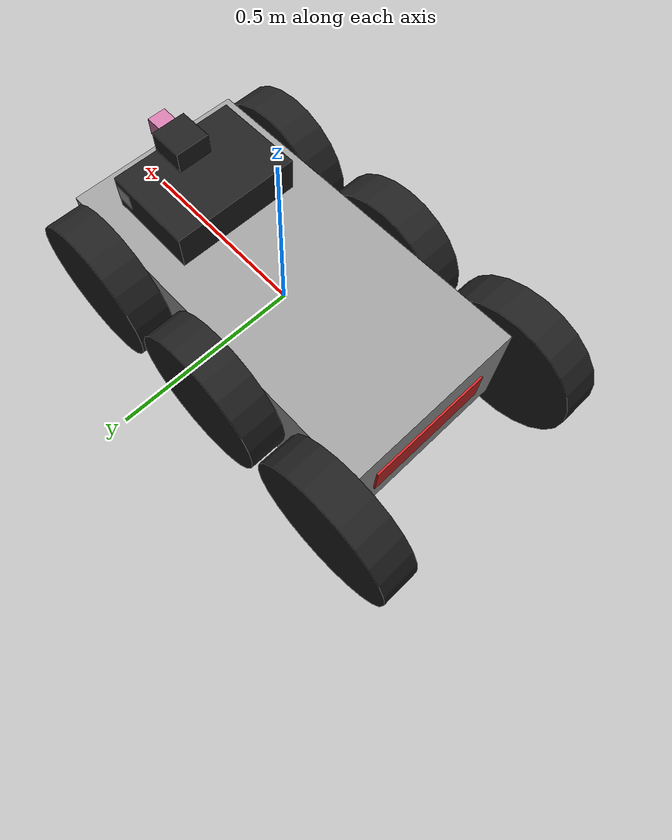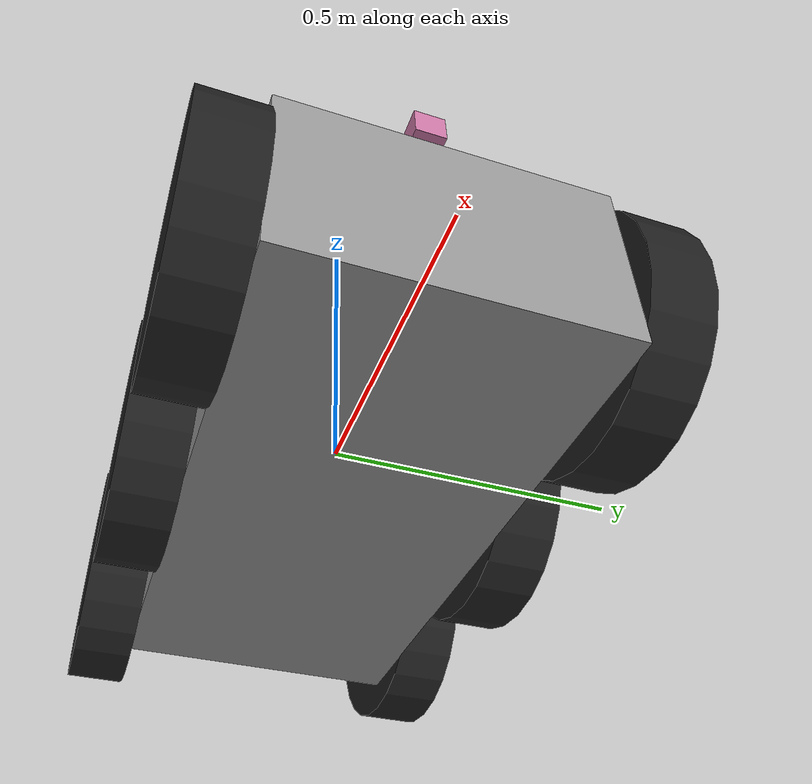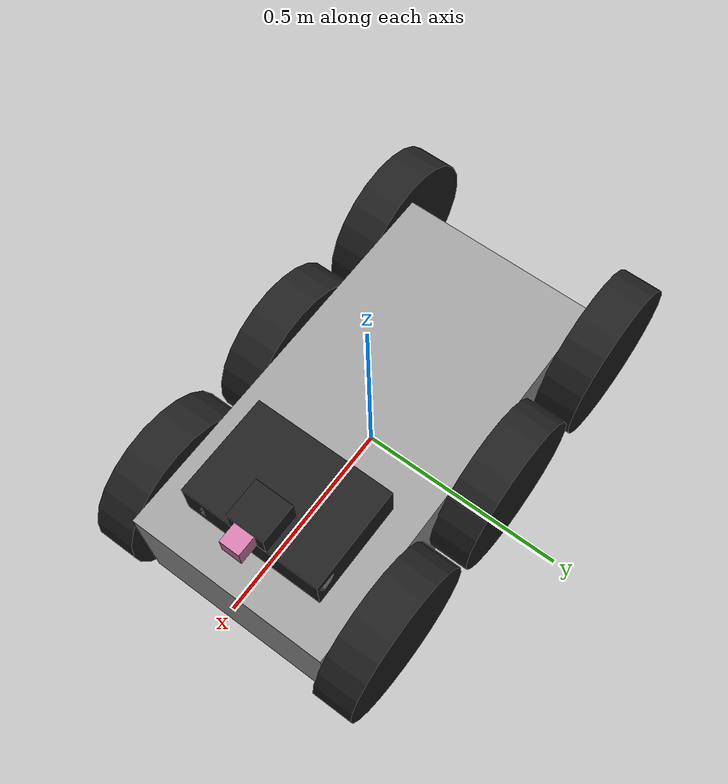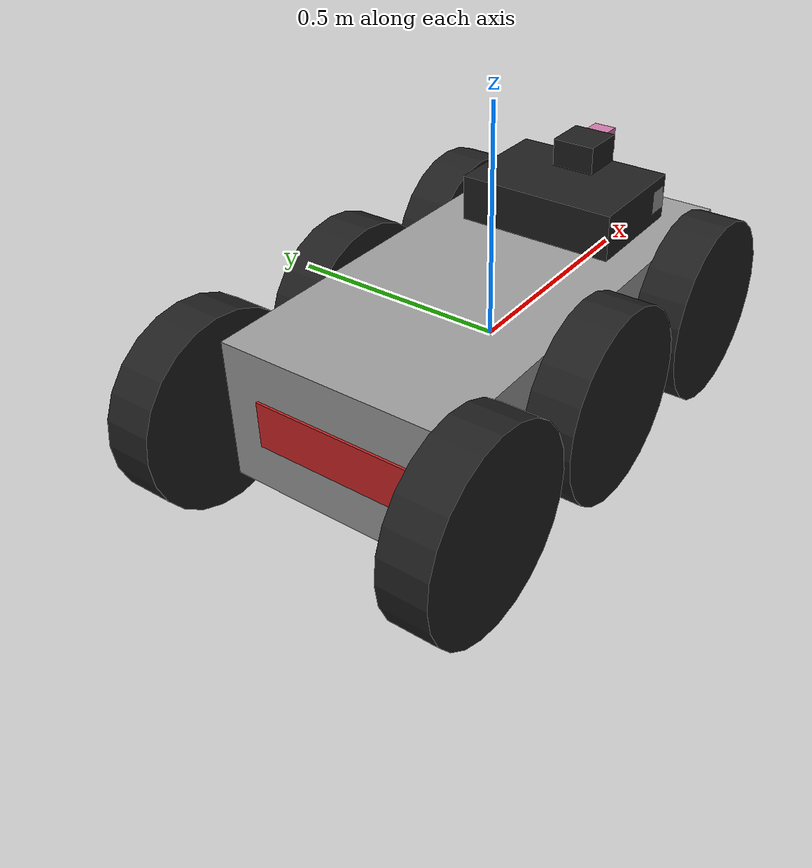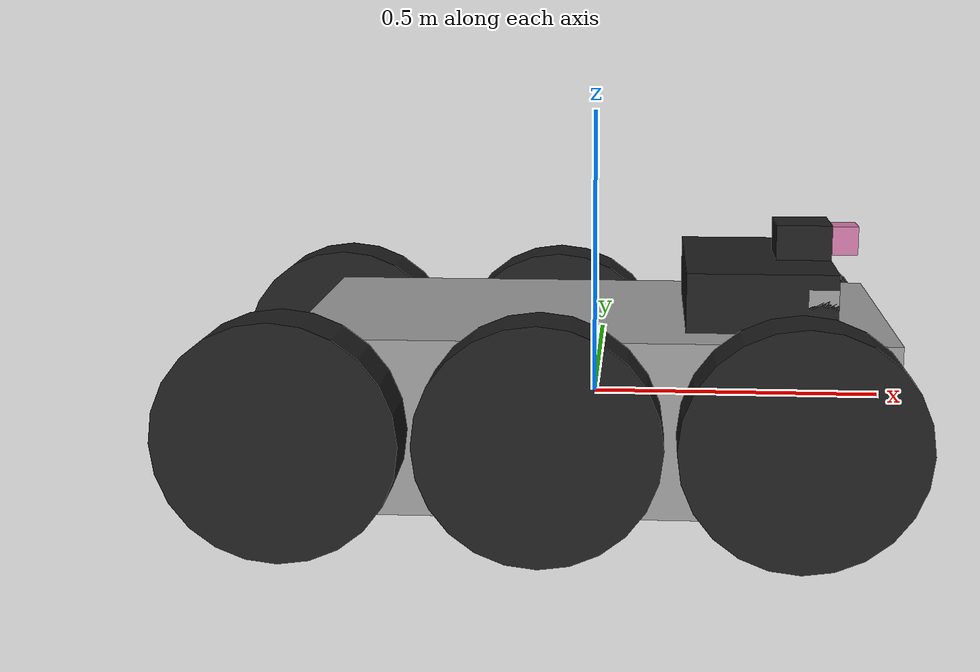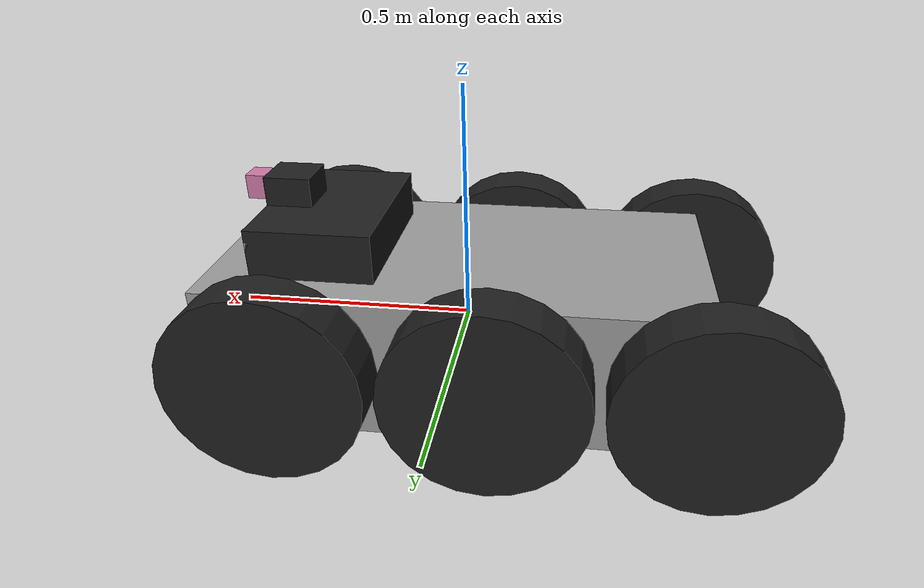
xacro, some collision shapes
<?xml version='1.0'?>

<robot name="moor" xmlns:xacro="http://www.ros.org/wiki/xacro">
<xacro:property name="cameraSize" value="0.05"/>
<xacro:property name="cameraMass" value="0.05"/>

<xacro:macro name="default_inertia">
      <inertia ixx="0.001" ixy="0.0" ixz="0.0" iyy="0.001" iyz="0.0" izz="0.001"/>
</xacro:macro>

<xacro:macro name="default_inertia_servos">
      <inertia ixx="0.01" ixy="0.0" ixz="0.0" iyy="0.01" iyz="0.0" izz="0.01"/>
</xacro:macro>

<xacro:macro name="default_limit">
    <limit effort="100.0" lower="-2.62" upper="2.62" velocity="3"/>
</xacro:macro>

<xacro:macro name="default_dynamics">
      <dynamics fricction="0" damping="0" />
</xacro:macro>

  <xacro:include filename="$(find moor_description)/urdf/moor.gazebo" />
  <xacro:include filename="$(find moor_description)/urdf/materials.xacro" />
  <xacro:include filename="$(find moor_description)/urdf/macros.xacro" />

 <!-- Base Size -->
  <xacro:property name="base_x_size" value="1" />
  <xacro:property name="base_y_size" value="0.5" />
  <xacro:property name="base_z_size" value="0.3" />

  <!-- Wheel Mounting Positions -->
  <xacro:property name="wheelbase" value="0.5120" />
  <xacro:property name="track" value="0.5708" />
  <xacro:property name="wheel_vertical_offset" value="0.03282" />

  <!-- Wheel Properties -->
  <xacro:property name="wheel_length" value="0.1" />
  <xacro:property name="wheel_radius" value="0.2" />
  <link name='base_link'>
    <pose>0 0 0.1 0 0 0</pose>

    <inertial>
      <mass value="15.0"/>
      <origin xyz="0.0 0 0.1" rpy=" 0 0 0"/>
      <inertia
         ixx="0.6022" ixy="-0.02364" ixz="-0.1197" iyy="1.7386" iyz="-0.001544" izz="2.0296"
      />
    </inertial>

    <collision name='collision'>
      <geometry>
        <box size="1 .5 .3"/>
      </geometry>
    </collision>

    <visual name='base_link_visual'>
      <origin xyz="0 0 0" rpy=" 0 0 0"/>
      <geometry>
        <box size="1 .5 .3"/>
      </geometry>
        <material name="grey"/>
    </visual>
  </link>

    <!-- Base footprint is on the ground under the robot -->
    <link name="base_footprint"/>

    <joint name="base_footprint_joint" type="fixed">
      <origin xyz="0 0 ${wheel_vertical_offset - wheel_radius}" rpy="0 0 0" />
      <parent link="base_link" />
      <child link="base_footprint" />
    </joint>

    <!-- Interial link stores the robot's inertial information -->
    <link name="inertial_link">
      <inertial>
        <mass value="0.01"/>
        <origin xyz="-0.00065 -0.085 0.062" />
        <inertia ixx="1" ixy="0" ixz="0" iyy="1" iyz="0" izz="1" />
      </inertial>
    </link>

    <joint name="inertial_joint" type="fixed">
      <origin xyz="0 0 0" rpy="0 0 0" />
      <parent link="base_link" />
      <child link="inertial_link" />
    </joint>

  <link name="medium_left_wheel">
    <origin xyz="0 0.3 0.1" rpy="0 1.5707 1.5707"/>
    <collision name="collision">
      <origin xyz="0 0 0" rpy="0 1.5707 1.5707"/>
      <geometry>
        <cylinder radius="0.2" length="0.1"/>
      </geometry>
    </collision>
    <visual name="medium_left_wheel_visual">
      <origin xyz="0 0 0" rpy="0 1.5707 1.5707"/>
      <geometry>
        <cylinder radius="0.2" length="0.1"/>
      </geometry>
        <material name="black"/>
    </visual>
    <inertial>
      <origin xyz="0 0 0" rpy="0 1.5707 1.5707"/>
      <mass value="1"/>
      <cylinder_inertia m="5" r="0.2" h="0.1"/>
      <inertia
        ixx="1.0" ixy="0.0" ixz="0.0"
        iyy="1.0" iyz="0.0"
        izz="1.0"/>
    </inertial>
  </link>

  <link name="medium_right_wheel">
    <origin xyz="0 -0.3 0.1" rpy="0 1.5707 1.5707"/>
    <collision name="collision">
      <origin xyz="0 0 0" rpy="0 1.5707 1.5707"/>
      <geometry>
        <cylinder radius="0.2" length="0.1"/>
      </geometry>
    </collision>
    <visual name="medium_right_wheel_visual">
      <origin xyz="0 0 0" rpy="0 1.5707 1.5707"/>
      <geometry>
        <cylinder radius="0.2" length="0.1"/>
      </geometry>
        <material name="black"/>
    </visual>
    <inertial>
      <origin xyz="0 0 0" rpy="0 1.5707 1.5707"/>
      <mass value="1"/>
      <cylinder_inertia m="5" r="0.2" h="0.1"/>
      <inertia
        ixx="1.0" ixy="0.0" ixz="0.0"
        iyy="1.0" iyz="0.0"
        izz="1.0"/>
    </inertial>
  </link>

  <link name="front_left_wheel">
    <collision name="collision">
      <!--origin xyz="0 0 0" rpy="0 1.5707 1.5707"/-->
      <geometry>
        <cylinder radius="0.2" length="0.1"/>
      </geometry>
    </collision>
    <visual name="front_left_wheel_visual">
      <origin xyz="0 0 0" rpy="0 1.5707 1.5707"/>
      <geometry>
        <cylinder radius="0.2" length="0.1"/>
      </geometry>
        <material name="black"/>
    </visual>
    <inertial>
      <origin xyz="0 0 0" rpy="0 1.5707 1.5707"/>
      <mass value="1"/>
      <cylinder_inertia m="5" r="0.2" h="0.1"/>
      <inertia
        ixx="1.0" ixy="0.0" ixz="0.0"
        iyy="1.0" iyz="0.0"
        izz="1.0"/>
    </inertial>
  </link>

  <link name="front_right_wheel">
    <collision name="collision">
      <!--origin xyz="0 0 0" rpy="0 1.5707 1.5707"/-->
      <geometry>
        <cylinder radius="0.2" length="0.1"/>
      </geometry>
    </collision>
    <visual name="front_right_wheel_visual">
      <origin xyz="0 0 0" rpy="0 1.5707 1.5707"/>
      <geometry>
        <cylinder radius="0.2" length="0.1"/>
      </geometry>
        <material name="black"/>
    </visual>
    <inertial>
      <origin xyz="0 0 0" rpy="0 1.5707 1.5707"/>
      <mass value="1"/>
      <cylinder_inertia m="5" r="0.2" h="0.1"/>
      <inertia
        ixx="1.0" ixy="0.0" ixz="0.0"
        iyy="1.0" iyz="0.0"
        izz="1.0"/>
    </inertial>
  </link>

<link name="back_left_wheel">
    <!--origin xyz="0.1 0.13 0.1" rpy="0 1.5707 1.5707"/-->
    <collision name="collision">
      <origin xyz="0 0 0" rpy="0 1.5707 1.5707"/>
      <geometry>
        <cylinder radius="0.2" length="0.1"/>
      </geometry>
    </collision>
    <visual name="back_left_wheel_visual">
      <origin xyz="0 0 0" rpy="0 1.5707 1.5707"/>
      <geometry>
        <cylinder radius="0.2" length="0.1"/>
      </geometry>
        <material name="black"/>
    </visual>
    <inertial>
      <origin xyz="0 0 0" rpy="0 1.5707 1.5707"/>
      <mass value="1"/>
      <cylinder_inertia m="5" r="0.2" h="0.1"/>
      <inertia
        ixx="1.0" ixy="0.0" ixz="0.0"
        iyy="1.0" iyz="0.0"
        izz="1.0"/>
    </inertial>
  </link>

  <link name="back_right_wheel">
    <!--origin xyz="0.1 -0.13 0.1" rpy="0 1.5707 1.5707"/-->
    <collision name="collision">
      <origin xyz="0 0 0" rpy="0 1.5707 1.5707"/>
      <geometry>
        <cylinder radius="0.2" length="0.1"/>
      </geometry>
    </collision>
    <visual name="back_right_wheel_visual">
      <origin xyz="0 0 0" rpy="0 1.5707 1.5707"/>
      <geometry>
        <cylinder radius="0.2" length="0.1"/>
      </geometry>
      <material name="black"/>
    </visual>
    <inertial>
      <origin xyz="0 0 0" rpy="0 1.5707 1.5707"/>
      <mass value="1"/>
      <cylinder_inertia m="5" r="0.2" h="0.1"/>
      <inertia
        ixx="1.0" ixy="0.0" ixz="0.0"
        iyy="1.0" iyz="0.0"
        izz="1.0"/>
    </inertial>
</link>

 <joint type="continuous" name="medium_left_wheel_hinge">
    <origin xyz="-0.08 0.3 0" rpy="0 0 0"/>
    <child link="medium_left_wheel"/>
    <parent link="base_link"/>
    <axis xyz="0 1 0" rpy="0 0 0"/>
    <limit effort="100" velocity="100"/>
    <joint_properties damping="0.0" friction="0.0"/>
  </joint>

 <joint type="continuous" name="medium_right_wheel_hinge">
    <origin xyz="-0.08 -0.3 0" rpy="0 0 0"/>
    <child link="medium_right_wheel"/>
    <parent link="base_link"/>
    <axis xyz="0 1 0" rpy="0 0 0"/>
    <limit effort="100" velocity="100"/>
    <joint_properties damping="0.0" friction="0.0"/>
  </joint>

  <joint type="continuous" name="front_left_wheel_hinge">
    <origin xyz="0.34 0.3 0" rpy="0 0 0"/>
    <child link="front_left_wheel"/>
    <parent link="base_link"/>
    <axis xyz="0 1 0" rpy="0 0 0"/>
    <limit effort="100" velocity="100"/>
    <joint_properties damping="0.0" friction="0.0"/>
  </joint>
  <joint type="continuous" name="front_right_wheel_hinge">
    <origin xyz="0.34 -0.3 0" rpy="0 0 0"/>
    <child link="front_right_wheel"/>
    <parent link="base_link"/>
    <axis xyz="0 1 0" rpy="0 0 0"/>
    <limit effort="100" velocity="100"/>
    <joint_properties damping="0.0" friction="0.0"/>
  </joint>

  <joint type="continuous" name="back_left_wheel_hinge">
    <origin xyz="-0.5 0.3 0" rpy="0 0 0"/>
    <child link="back_left_wheel"/>
    <parent link="base_link"/>
    <axis xyz="0 1 0" rpy="0 0 0"/>
    <limit effort="100" velocity="100"/>
    <joint_properties damping="0.0" friction="0.0"/>
  </joint>

 <joint type="continuous" name="back_right_wheel_hinge">
    <origin xyz="-0.5 -0.3 0" rpy="0 0 0"/>
    <child link="back_right_wheel"/>
    <parent link="base_link"/>
    <axis xyz="0 1 0" rpy="0 0 0"/>
    <limit effort="100" velocity="100"/>
    <joint_properties damping="0.0" friction="0.0"/>
  </joint>
<link name="left_camera">
    <collision>
    <origin xyz="0 0 0" rpy="0 0 0"/>
    <geometry>
      <box size="${cameraSize} ${cameraSize} ${cameraSize}"/>
    </geometry>
    </collision>

    <visual>
    <origin xyz="0 0 0" rpy="0 0 0"/>
    <geometry>
      <box size="${cameraSize} ${cameraSize} ${cameraSize}"/>
    </geometry>
    <material name="grey"/>
    </visual>

    <inertial>
       <mass value="${cameraMass}" />
       <origin xyz="0 0 0" rpy="0 0 0" />
       <box_inertia m="${cameraMass}" x= "${cameraSize}" y="${cameraSize}" z="${cameraSize}" />
       <inertia ixx="1e-6" ixy="0" ixz="0" iyy="1e-6" iyz="0" izz="1e-6" />
    </inertial>
</link>
<link name="right_camera">
    <collision>
    <origin xyz="0 0 0" rpy="0 0 0"/>
    <geometry>
      <box size="${cameraSize} ${cameraSize} ${cameraSize}"/>
    </geometry>
    </collision>

    <visual>
    <origin xyz="0 0 0" rpy="0 0 0"/>
    <geometry>
      <box size="${cameraSize} ${cameraSize} ${cameraSize}"/>
    </geometry>
    <material name="grey"/>
    </visual>

    <inertial>
       <mass value="${cameraMass}" />
       <origin xyz="0 0 0" rpy="0 0 0" />
       <box_inertia m="${cameraMass}" x= "${cameraSize}" y="${cameraSize}" z="${cameraSize}" />
       <inertia ixx="1e-6" ixy="0" ixz="0" iyy="1e-6" iyz="0" izz="1e-6" />
    </inertial>
</link>
<link name="stereocamera_baselink">
    <collision>
    <origin xyz="0 0 0" rpy="0 0 0"/>
    <geometry>
      <box size="0.25 .35 0.1"/>
    </geometry>
    </collision>

    <visual>
    <origin xyz="0 0 0" rpy="0 0 0"/>
    <geometry>
      <box size="0.25 0.35 0.1"/>
    </geometry>
    <material name="black"/>
    </visual>

    <inertial>
       <mass value="0.1" />
       <origin xyz="0 0 0" rpy="0 0 0" />
       <box_inertia m="0.1" x= "0.035" y="0.025" z="0.01" />
       <inertia ixx="1e-6" ixy="0" ixz="0" iyy="1e-6" iyz="0" izz="1e-6" />
    </inertial>
</link>

 <joint name="servo_joint" type="fixed">
    <parent link="stereocamera_baselink"/>
    <child link="servo_link"/>
    <origin xyz="0.078 0 0.08" rpy="0 0 0"/>
    <axis xyz="0 0 1" />
	<default_limit />
	<default_dynamics />
  </joint>

  <link name="servo_link">
    <visual>
      <geometry>
        <box size="0.095 0.095 0.06"/>
      </geometry>
      <origin xyz="0 0 0" rpy="0 0 0"/>
      <material name="black" />
    </visual>
    <collision>
      <origin xyz="0 0 0" rpy="0 0 0"/>
	  <geometry>
        <box size="0.1 0.1 0.06"/>
      </geometry>
    </collision>
    <inertial>
      <origin xyz="0 0 0" rpy="0 0 0" />
      <mass value="0.055"/>
	  <default_inertia_servos />
    </inertial>
  </link>

    <link name="imu_link">
        <collision>
            <origin xyz="0 0 0" rpy="0 0 0"/>
            <geometry>
                <box size="0.02 0.02 0.02"/>
            </geometry>
        </collision>
        <visual>
            <origin xyz="0 0 0" rpy="0 0 0"/>
            <geometry>
                <box size="0.02 0.02 0.02"/>
            </geometry>
            <material name="red"/>
        </visual>
        <inertial>
            <mass value="0.001" />
            <origin xyz="0 0 0" rpy="0 0 0"/>
            <inertia ixx="0.00000015" ixy="0" ixz="0" iyy="0.00000015" iyz="0" izz="0.00000015" />
        </inertial>
</link>

<joint name="imu_joint" type="fixed">
  <axis xyz="0 1 0" />
  <origin xyz="0 0 0" rpy="0 0 0"/>
  <parent link="stereocamera_baselink"/>
  <child link="imu_link"/>
</joint>

<joint name="stereocamera_baselink_joint" type="fixed">
  <axis xyz="0 1 0" />
  <origin xyz="0.28 0 0.2" rpy="0 0 0"/>
  <parent link="base_link"/>
  <child link="stereocamera_baselink"/>
</joint>
<joint name="left_camera_joint" type="fixed">
  <axis xyz="0 1 0" />
  <origin xyz="0.1 0.15 0" rpy="0 0 0"/>
  <parent link="stereocamera_baselink"/>
  <child link="left_camera"/>
</joint>

<joint name="right_camera_joint" type="fixed">
  <axis xyz="0 1 0" />
  <origin xyz="0.1 -0.15 0" rpy="0 0 0"/>
  <parent link="stereocamera_baselink"/>
  <child link="right_camera"/>
</joint>

<joint name="base_laser_joint" type="continuous">
    <parent link="servo_link"/>
    <child link="base_laser"/>
    <axis xyz="1 0 0" />
 <origin xyz="0.07 0 0" rpy="0 0 0"/>
	<default_limit />
	<default_dynamics />
</joint>
  <transmission name="tran1">
    <type>transmission_interface/SimpleTransmission</type>
     <joint name="base_laser_joint">
      <hardwareInterface>EffortJointInterface</hardwareInterface>
     </joint>
    <actuator name="moor_dynamixel">
      <hardwareInterface>EffortJointInterface</hardwareInterface>
      <mechanicalReduction>1</mechanicalReduction>
    </actuator>
  </transmission>

  <!-- Hokuyo Laser -->
  <link name="base_laser">
    <collision>
      <origin xyz="0 0 0" rpy="0 0 0"/>
      <geometry>
    <box size="0.05 0.05 0.05"/>
      </geometry>
    </collision>

    <visual>
    <origin xyz="0 0 0" rpy="0 0 0"/>
      <geometry>
        <mesh filename="/home/ali/mybot_ws/src/moor_description/meshes/hokuyo.dae"/>
        <box size="0.05 0.05 0.05"/>
      </geometry>
    <!--material name="red"/-->
    </visual>

    <inertial>
      <mass value="1e-5" />
      <origin xyz="0 0 0" rpy="0 0 0"/>
      <inertia ixx="1e-6" ixy="0" ixz="0" iyy="1e-6" iyz="0" izz="1e-6" />
    </inertial>
</link>

<link name="mainboard">
    <collision>
    <origin xyz="0 -0.4 0" rpy="0 0 0"/>
    <geometry>
      <box size="0.25 .35 0.1"/>
    </geometry>
    </collision>

    <visual>
    <origin xyz="0 0 0" rpy="0 0 0"/>
    <geometry>
      <box size="0.25 0.35 0.1"/>
    </geometry>
    <material name="red"/>
    </visual>

    <inertial>
       <mass value="6" />
       <origin xyz="0 0 0" rpy="0 0 0" />
        <box_inertia m="6" x= "0.25" y="0.35" z="0.1" />
       <inertia ixx="1e-6" ixy="0" ixz="0" iyy="1e-6" iyz="0" izz="1e-6" />
    </inertial>
</link>

<joint name="mainboard_joint" type="fixed">
  <axis xyz="0 1 0" />
  <origin xyz="-0.38 0 0" rpy="0 0 0"/>
  <parent link="base_link"/>
  <child link="mainboard"/>
</joint>
</robot>
